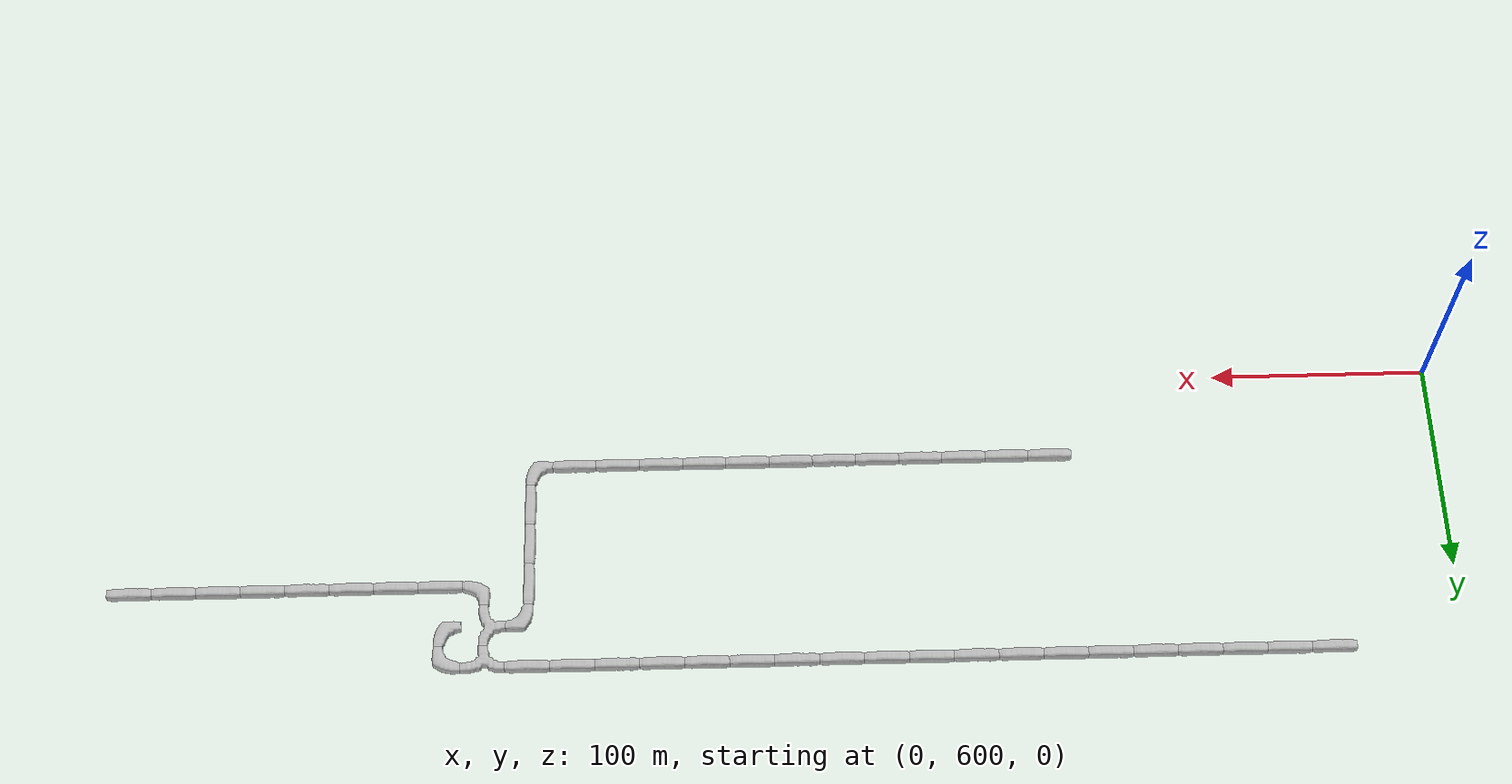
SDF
<sdf version="1.6">
 <world name="cave_16000_4">
  <include>
   <static>true</static>
   <name>cave_9_32</name>
   <pose>180 640 0 0 0 1.5707963267948966</pose>
   <uri>model://cave_straight_20m</uri>
  </include>
  <include>
   <static>true</static>
   <name>cave_10_32</name>
   <pose>200 640 0 0 0 1.5707963267948966</pose>
   <uri>model://cave_straight_20m</uri>
  </include>
  <include>
   <static>true</static>
   <name>cave_11_32</name>
   <pose>220 640 0 0 0 1.5707963267948966</pose>
   <uri>model://cave_straight_20m</uri>
  </include>
  <include>
   <static>true</static>
   <name>cave_12_32</name>
   <pose>240 640 0 0 0 1.5707963267948966</pose>
   <uri>model://cave_straight_20m</uri>
  </include>
  <include>
   <static>true</static>
   <name>cave_13_32</name>
   <pose>260 640 0 0 0 1.5707963267948966</pose>
   <uri>model://cave_straight_20m</uri>
  </include>
  <include>
   <static>true</static>
   <name>cave_14_32</name>
   <pose>280 640 0 0 0 1.5707963267948966</pose>
   <uri>model://cave_straight_20m</uri>
  </include>
  <include>
   <static>true</static>
   <name>cave_15_32</name>
   <pose>300 640 0 0 0 1.5707963267948966</pose>
   <uri>model://cave_straight_20m</uri>
  </include>
  <include>
   <static>true</static>
   <name>cave_16_32</name>
   <pose>320 640 0 0 0 1.5707963267948966</pose>
   <uri>model://cave_straight_20m</uri>
  </include>
  <include>
   <static>true</static>
   <name>cave_17_32</name>
   <pose>340 640 0 0 0 1.5707963267948966</pose>
   <uri>model://cave_straight_20m</uri>
  </include>
  <include>
   <static>true</static>
   <name>cave_18_32</name>
   <pose>360 640 0 0 0 1.5707963267948966</pose>
   <uri>model://cave_straight_20m</uri>
  </include>
  <include>
   <static>true</static>
   <name>cave_19_32</name>
   <pose>380 640 0 0 0 1.5707963267948966</pose>
   <uri>model://cave_straight_20m</uri>
  </include>
  <include>
   <static>true</static>
   <name>cave_20_32</name>
   <pose>400 640 0 0 0 1.5707963267948966</pose>
   <uri>model://cave_straight_20m</uri>
  </include>
  <include>
   <static>true</static>
   <name>cave_21_32</name>
   <pose>420 640 0 0 0 1.5707963267948966</pose>
   <uri>model://cave_L_20m</uri>
  </include>
  <include>
   <static>true</static>
   <name>cave_21_33</name>
   <pose>420 660 0 0 0 0.0</pose>
   <uri>model://cave_straight_20m</uri>
  </include>
  <include>
   <static>true</static>
   <name>cave_21_34</name>
   <pose>420 680 0 0 0 0.0</pose>
   <uri>model://cave_straight_20m</uri>
  </include>
  <include>
   <static>true</static>
   <name>cave_21_35</name>
   <pose>420 700 0 0 0 0.0</pose>
   <uri>model://cave_straight_20m</uri>
  </include>
  <include>
   <static>true</static>
   <name>cave_21_36</name>
   <pose>420 720 0 0 0 -1.5707963267948966</pose>
   <uri>model://cave_L_20m</uri>
  </include>
  <include>
   <static>true</static>
   <name>cave_22_36</name>
   <pose>440 720 0 0 0 1.5707963267948966</pose>
   <uri>model://cave_3way_20m</uri>
  </include>
  <include>
   <static>true</static>
   <name>cave_22_35</name>
   <pose>440 700 0 0 0 0.0</pose>
   <uri>model://cave_L_20m</uri>
  </include>
  <include>
   <static>true</static>
   <name>cave_23_35</name>
   <pose>460 700 0 0 0 1.5707963267948966</pose>
   <uri>model://cave_straight_20m</uri>
  </include>
  <include>
   <static>true</static>
   <name>cave_24_35</name>
   <pose>480 700 0 0 0 1.5707963267948966</pose>
   <uri>model://cave_straight_20m</uri>
  </include>
  <include>
   <static>true</static>
   <name>cave_25_35</name>
   <pose>500 700 0 0 0 1.5707963267948966</pose>
   <uri>model://cave_straight_20m</uri>
  </include>
  <include>
   <static>true</static>
   <name>cave_26_35</name>
   <pose>520 700 0 0 0 1.5707963267948966</pose>
   <uri>model://cave_straight_20m</uri>
  </include>
  <include>
   <static>true</static>
   <name>cave_27_35</name>
   <pose>540 700 0 0 0 1.5707963267948966</pose>
   <uri>model://cave_straight_20m</uri>
  </include>
  <include>
   <static>true</static>
   <name>cave_28_35</name>
   <pose>560 700 0 0 0 1.5707963267948966</pose>
   <uri>model://cave_straight_20m</uri>
  </include>
  <include>
   <static>true</static>
   <name>cave_29_35</name>
   <pose>580 700 0 0 0 1.5707963267948966</pose>
   <uri>model://cave_straight_20m</uri>
  </include>
  <include>
   <static>true</static>
   <name>cave_30_35</name>
   <pose>600 700 0 0 0 1.5707963267948966</pose>
   <uri>model://cave_straight_20m</uri>
  </include>
  <include>
   <static>true</static>
   <name>cave_22_37</name>
   <pose>440 740 0 0 0 3.141592653589793</pose>
   <uri>model://cave_3way_20m</uri>
  </include>
  <include>
   <static>true</static>
   <name>cave_23_37</name>
   <pose>460 740 0 0 0 3.141592653589793</pose>
   <uri>model://cave_L_20m</uri>
  </include>
  <include>
   <static>true</static>
   <name>cave_23_36</name>
   <pose>460 720 0 0 0 1.5707963267948966</pose>
   <uri>model://cave_L_20m</uri>
  </include>
  <include>
   <static>true</static>
   <name>cave_21_37</name>
   <pose>420 740 0 0 0 1.5707963267948966</pose>
   <uri>model://cave_straight_20m</uri>
  </include>
  <include>
   <static>true</static>
   <name>cave_20_37</name>
   <pose>400 740 0 0 0 1.5707963267948966</pose>
   <uri>model://cave_straight_20m</uri>
  </include>
  <include>
   <static>true</static>
   <name>cave_19_37</name>
   <pose>380 740 0 0 0 1.5707963267948966</pose>
   <uri>model://cave_straight_20m</uri>
  </include>
  <include>
   <static>true</static>
   <name>cave_18_37</name>
   <pose>360 740 0 0 0 1.5707963267948966</pose>
   <uri>model://cave_straight_20m</uri>
  </include>
  <include>
   <static>true</static>
   <name>cave_17_37</name>
   <pose>340 740 0 0 0 1.5707963267948966</pose>
   <uri>model://cave_straight_20m</uri>
  </include>
  <include>
   <static>true</static>
   <name>cave_16_37</name>
   <pose>320 740 0 0 0 1.5707963267948966</pose>
   <uri>model://cave_straight_20m</uri>
  </include>
  <include>
   <static>true</static>
   <name>cave_15_37</name>
   <pose>300 740 0 0 0 1.5707963267948966</pose>
   <uri>model://cave_straight_20m</uri>
  </include>
  <include>
   <static>true</static>
   <name>cave_14_37</name>
   <pose>280 740 0 0 0 1.5707963267948966</pose>
   <uri>model://cave_straight_20m</uri>
  </include>
  <include>
   <static>true</static>
   <name>cave_13_37</name>
   <pose>260 740 0 0 0 1.5707963267948966</pose>
   <uri>model://cave_straight_20m</uri>
  </include>
  <include>
   <static>true</static>
   <name>cave_12_37</name>
   <pose>240 740 0 0 0 1.5707963267948966</pose>
   <uri>model://cave_straight_20m</uri>
  </include>
  <include>
   <static>true</static>
   <name>cave_11_37</name>
   <pose>220 740 0 0 0 1.5707963267948966</pose>
   <uri>model://cave_straight_20m</uri>
  </include>
  <include>
   <static>true</static>
   <name>cave_10_37</name>
   <pose>200 740 0 0 0 1.5707963267948966</pose>
   <uri>model://cave_straight_20m</uri>
  </include>
  <include>
   <static>true</static>
   <name>cave_9_37</name>
   <pose>180 740 0 0 0 1.5707963267948966</pose>
   <uri>model://cave_straight_20m</uri>
  </include>
  <include>
   <static>true</static>
   <name>cave_8_37</name>
   <pose>160 740 0 0 0 1.5707963267948966</pose>
   <uri>model://cave_straight_20m</uri>
  </include>
  <include>
   <static>true</static>
   <name>cave_7_37</name>
   <pose>140 740 0 0 0 1.5707963267948966</pose>
   <uri>model://cave_straight_20m</uri>
  </include>
  <include>
   <static>true</static>
   <name>cave_6_37</name>
   <pose>120 740 0 0 0 1.5707963267948966</pose>
   <uri>model://cave_straight_20m</uri>
  </include>
  <include>
   <static>true</static>
   <name>cave_5_37</name>
   <pose>100 740 0 0 0 1.5707963267948966</pose>
   <uri>model://cave_straight_20m</uri>
  </include>
  <include>
   <static>true</static>
   <name>cave_4_37</name>
   <pose>80 740 0 0 0 1.5707963267948966</pose>
   <uri>model://cave_straight_20m</uri>
  </include>
  <include>
   <static>true</static>
   <name>cave_3_37</name>
   <pose>60 740 0 0 0 1.5707963267948966</pose>
   <uri>model://cave_straight_20m</uri>
  </include>
 </world>
</sdf>
